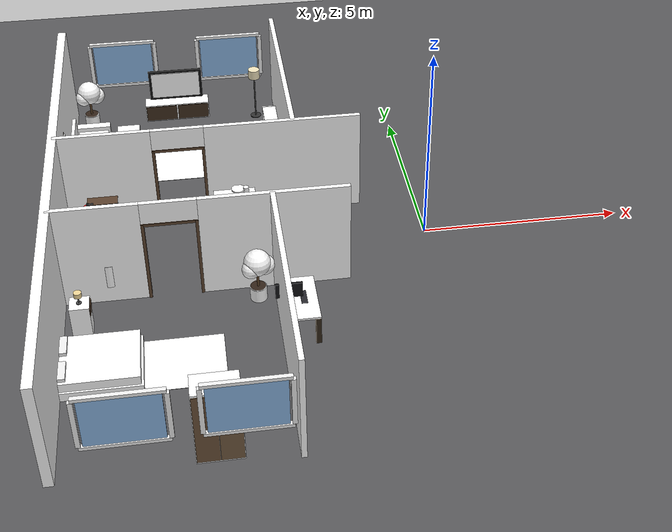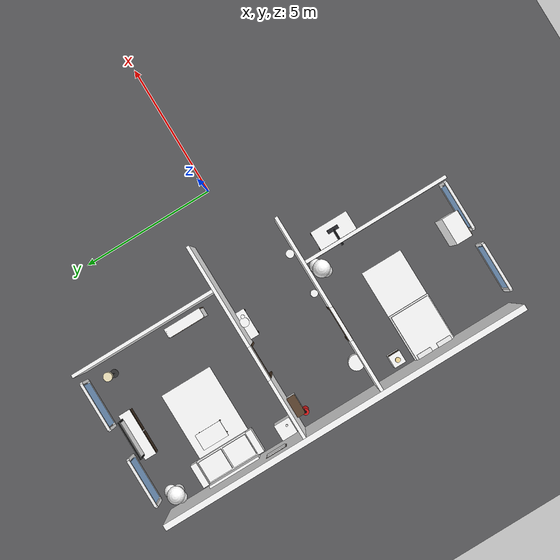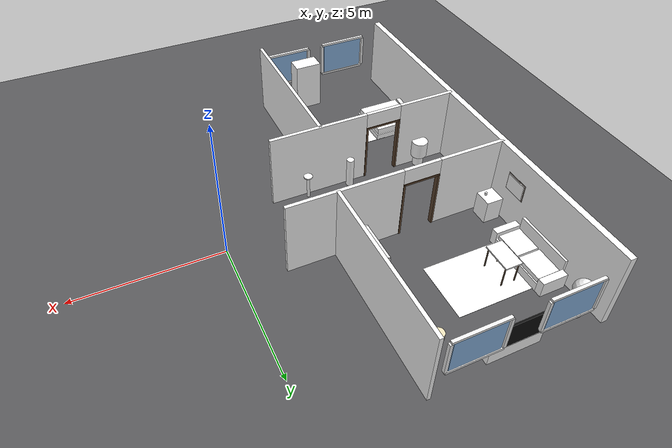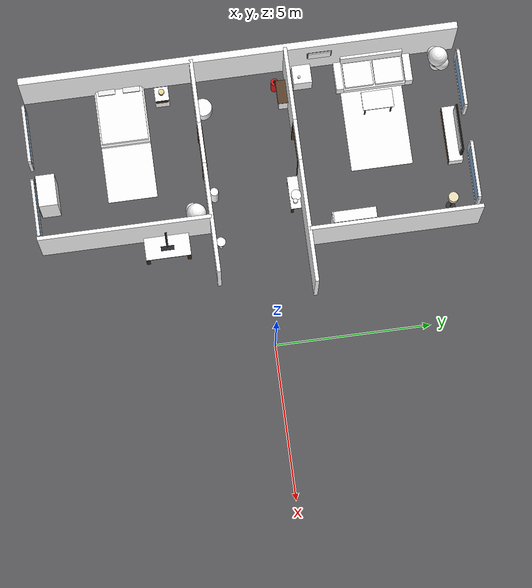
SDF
<sdf version="1.9">
 <world name="dan_house">
  <model name="ground_plane">
   <static>true</static>
   <link name="link">
    <collision name="c"><geometry><plane><normal>0 0 1</normal><size>90 90</size></plane></geometry></collision>
    <visual name="v">
     <geometry><plane><normal>0 0 1</normal><size>90 90</size></plane></geometry>
     <material><diffuse>0.35 0.35 0.36 1</diffuse></material>
    </visual>
   </link>
  </model>
  <model name="wall_west_0">
   <pose>-9.0 0.000 1.35 0 0 0</pose>
   <static>true</static>
   <link name="link">
    <collision name="c"><geometry><box><size>0.22 14.000 2.7</size></box></geometry></collision>
    <visual name="v">
     <geometry><box><size>0.22 14.000 2.7</size></box></geometry>
     <material>
      <diffuse>1 1 1 1</diffuse>
      <pbr>
       <metal>
        <albedo_map>textures/wallpaper.jpg</albedo_map>
        <metalness>0.0</metalness>
        <roughness>0.85</roughness>
       </metal>
      </pbr>
     </material>
    </visual>
   </link>
  </model>
  <model name="wall_corr_north_0">
   <pose>-7.825 1.5 1.35 0 0 0</pose>
   <static>true</static>
   <link name="link">
    <collision name="c"><geometry><box><size>2.350 0.12 2.7</size></box></geometry></collision>
    <visual name="v">
     <geometry><box><size>2.350 0.12 2.7</size></box></geometry>
     <material>
      <diffuse>1 1 1 1</diffuse>
      <pbr>
       <metal>
        <albedo_map>textures/wallpaper.jpg</albedo_map>
        <metalness>0.0</metalness>
        <roughness>0.85</roughness>
       </metal>
      </pbr>
     </material>
    </visual>
   </link>
  </model>
  <model name="wall_corr_north_1">
   <pose>-3.400 1.5 1.35 0 0 0</pose>
   <static>true</static>
   <link name="link">
    <collision name="c"><geometry><box><size>3.900 0.12 2.7</size></box></geometry></collision>
    <visual name="v">
     <geometry><box><size>3.900 0.12 2.7</size></box></geometry>
     <material>
      <diffuse>1 1 1 1</diffuse>
      <pbr>
       <metal>
        <albedo_map>textures/wallpaper.jpg</albedo_map>
        <metalness>0.0</metalness>
        <roughness>0.85</roughness>
       </metal>
      </pbr>
     </material>
    </visual>
   </link>
  </model>
  <model name="wall_corr_north_door_-6.0_p0">
   <pose>-6.615 1.5 1.075 0 0 0</pose>
   <static>true</static>
   <link name="link">
    <visual name="v">
     <geometry><box><size>0.07 0.160 2.15</size></box></geometry>
     <material><diffuse>0.36 0.26 0.18 1</diffuse></material>
    </visual>
   </link>
  </model>
  <model name="wall_corr_north_door_-6.0_p1">
   <pose>-5.385 1.5 1.075 0 0 0</pose>
   <static>true</static>
   <link name="link">
    <visual name="v">
     <geometry><box><size>0.07 0.160 2.15</size></box></geometry>
     <material><diffuse>0.36 0.26 0.18 1</diffuse></material>
    </visual>
   </link>
  </model>
  <model name="wall_corr_north_door_-6.0_top">
   <pose>-6.0 1.5 2.1149999999999998 0 0 0</pose>
   <static>true</static>
   <link name="link">
    <visual name="v">
     <geometry><box><size>1.3 0.160 0.07</size></box></geometry>
     <material><diffuse>0.36 0.26 0.18 1</diffuse></material>
    </visual>
   </link>
  </model>
  <model name="wall_corr_north_door_-6.0_lintel">
   <pose>-6.0 1.5 2.4000000000000004 0 0 0</pose>
   <static>true</static>
   <link name="link">
    <visual name="v">
     <geometry><box><size>1.3 0.12 0.600</size></box></geometry>
     <material>
      <diffuse>1 1 1 1</diffuse>
      <pbr>
       <metal>
        <albedo_map>textures/wallpaper.jpg</albedo_map>
        <metalness>0.0</metalness>
        <roughness>0.85</roughness>
       </metal>
      </pbr>
     </material>
    </visual>
   </link>
  </model>
  <model name="wall_corr_south_0">
   <pose>-7.975 -1.5 1.35 0 0 0</pose>
   <static>true</static>
   <link name="link">
    <collision name="c"><geometry><box><size>2.050 0.12 2.7</size></box></geometry></collision>
    <visual name="v">
     <geometry><box><size>2.050 0.12 2.7</size></box></geometry>
     <material>
      <diffuse>1 1 1 1</diffuse>
      <pbr>
       <metal>
        <albedo_map>textures/wallpaper.jpg</albedo_map>
        <metalness>0.0</metalness>
        <roughness>0.85</roughness>
       </metal>
      </pbr>
     </material>
    </visual>
   </link>
  </model>
  <model name="wall_corr_south_1">
   <pose>-3.900 -1.5 1.35 0 0 0</pose>
   <static>true</static>
   <link name="link">
    <collision name="c"><geometry><box><size>3.500 0.12 2.7</size></box></geometry></collision>
    <visual name="v">
     <geometry><box><size>3.500 0.12 2.7</size></box></geometry>
     <material>
      <diffuse>1 1 1 1</diffuse>
      <pbr>
       <metal>
        <albedo_map>textures/wallpaper.jpg</albedo_map>
        <metalness>0.0</metalness>
        <roughness>0.85</roughness>
       </metal>
      </pbr>
     </material>
    </visual>
   </link>
  </model>
  <model name="wall_corr_south_door_-6.3_p0">
   <pose>-6.915 -1.5 1.075 0 0 0</pose>
   <static>true</static>
   <link name="link">
    <visual name="v">
     <geometry><box><size>0.07 0.160 2.15</size></box></geometry>
     <material><diffuse>0.36 0.26 0.18 1</diffuse></material>
    </visual>
   </link>
  </model>
  <model name="wall_corr_south_door_-6.3_p1">
   <pose>-5.685 -1.5 1.075 0 0 0</pose>
   <static>true</static>
   <link name="link">
    <visual name="v">
     <geometry><box><size>0.07 0.160 2.15</size></box></geometry>
     <material><diffuse>0.36 0.26 0.18 1</diffuse></material>
    </visual>
   </link>
  </model>
  <model name="wall_corr_south_door_-6.3_top">
   <pose>-6.3 -1.5 2.1149999999999998 0 0 0</pose>
   <static>true</static>
   <link name="link">
    <visual name="v">
     <geometry><box><size>1.3 0.160 0.07</size></box></geometry>
     <material><diffuse>0.36 0.26 0.18 1</diffuse></material>
    </visual>
   </link>
  </model>
  <model name="wall_corr_south_door_-6.3_lintel">
   <pose>-6.3 -1.5 2.4000000000000004 0 0 0</pose>
   <static>true</static>
   <link name="link">
    <visual name="v">
     <geometry><box><size>1.3 0.12 0.600</size></box></geometry>
     <material>
      <diffuse>1 1 1 1</diffuse>
      <pbr>
       <metal>
        <albedo_map>textures/wallpaper.jpg</albedo_map>
        <metalness>0.0</metalness>
        <roughness>0.85</roughness>
       </metal>
      </pbr>
     </material>
    </visual>
   </link>
  </model>
  <model name="wall_living_kitchen_0">
   <pose>-3.14 4.250 1.35 0 0 0</pose>
   <static>true</static>
   <link name="link">
    <collision name="c"><geometry><box><size>0.12 5.500 2.7</size></box></geometry></collision>
    <visual name="v">
     <geometry><box><size>0.12 5.500 2.7</size></box></geometry>
     <material>
      <diffuse>1 1 1 1</diffuse>
      <pbr>
       <metal>
        <albedo_map>textures/wallpaper.jpg</albedo_map>
        <metalness>0.0</metalness>
        <roughness>0.85</roughness>
       </metal>
      </pbr>
     </material>
    </visual>
   </link>
  </model>
  <model name="wall_bed1_bed2_0">
   <pose>-3.94 -4.250 1.35 0 0 0</pose>
   <static>true</static>
   <link name="link">
    <collision name="c"><geometry><box><size>0.12 5.500 2.7</size></box></geometry></collision>
    <visual name="v">
     <geometry><box><size>0.12 5.500 2.7</size></box></geometry>
     <material>
      <diffuse>1 1 1 1</diffuse>
      <pbr>
       <metal>
        <albedo_map>textures/wallpaper.jpg</albedo_map>
        <metalness>0.0</metalness>
        <roughness>0.85</roughness>
       </metal>
      </pbr>
     </material>
    </visual>
   </link>
  </model>
  <model name="window_n1">
   <pose>-7.4 6.95 1.6 0 0 0</pose>
   <static>true</static>
   <link name="link">
    <visual name="pane">
     <geometry><box><size>1.62 0.06 1.2</size></box></geometry>
     <material><diffuse>0.55 0.72 0.9 1</diffuse><emissive>0.14 0.2 0.3</emissive></material>
    </visual>
    <visual name="ft">
     <pose>0 0 0.65 0 0 0</pose>
     <geometry><box><size>1.80 0.1 0.08</size></box></geometry>
     <material><diffuse>0.95 0.95 0.95 1</diffuse></material>
    </visual>
    <visual name="fb">
     <pose>0 0 -0.65 0 0 0</pose>
     <geometry><box><size>1.80 0.1 0.08</size></box></geometry>
     <material><diffuse>0.95 0.95 0.95 1</diffuse></material>
    </visual>
    <visual name="fl">
     <pose>-0.90 0 0 0 0 0</pose>
     <geometry><box><size>0.1 0.1 1.2</size></box></geometry>
     <material><diffuse>0.95 0.95 0.95 1</diffuse></material>
    </visual>
    <visual name="fr">
     <pose>0.90 0 0 0 0 0</pose>
     <geometry><box><size>0.1 0.1 1.2</size></box></geometry>
     <material><diffuse>0.95 0.95 0.95 1</diffuse></material>
    </visual>
   </link>
  </model>
  <model name="window_n2">
   <pose>-4.4 6.95 1.6 0 0 0</pose>
   <static>true</static>
   <link name="link">
    <visual name="pane">
     <geometry><box><size>1.62 0.06 1.2</size></box></geometry>
     <material><diffuse>0.55 0.72 0.9 1</diffuse><emissive>0.14 0.2 0.3</emissive></material>
    </visual>
    <visual name="ft">
     <pose>0 0 0.65 0 0 0</pose>
     <geometry><box><size>1.80 0.1 0.08</size></box></geometry>
     <material><diffuse>0.95 0.95 0.95 1</diffuse></material>
    </visual>
    <visual name="fb">
     <pose>0 0 -0.65 0 0 0</pose>
     <geometry><box><size>1.80 0.1 0.08</size></box></geometry>
     <material><diffuse>0.95 0.95 0.95 1</diffuse></material>
    </visual>
    <visual name="fl">
     <pose>-0.90 0 0 0 0 0</pose>
     <geometry><box><size>0.1 0.1 1.2</size></box></geometry>
     <material><diffuse>0.95 0.95 0.95 1</diffuse></material>
    </visual>
    <visual name="fr">
     <pose>0.90 0 0 0 0 0</pose>
     <geometry><box><size>0.1 0.1 1.2</size></box></geometry>
     <material><diffuse>0.95 0.95 0.95 1</diffuse></material>
    </visual>
   </link>
  </model>
  <model name="window_s1">
   <pose>-7.4 -6.95 1.6 0 0 0</pose>
   <static>true</static>
   <link name="link">
    <visual name="pane">
     <geometry><box><size>1.62 0.06 1.2</size></box></geometry>
     <material><diffuse>0.55 0.72 0.9 1</diffuse><emissive>0.14 0.2 0.3</emissive></material>
    </visual>
    <visual name="ft">
     <pose>0 0 0.65 0 0 0</pose>
     <geometry><box><size>1.80 0.1 0.08</size></box></geometry>
     <material><diffuse>0.95 0.95 0.95 1</diffuse></material>
    </visual>
    <visual name="fb">
     <pose>0 0 -0.65 0 0 0</pose>
     <geometry><box><size>1.80 0.1 0.08</size></box></geometry>
     <material><diffuse>0.95 0.95 0.95 1</diffuse></material>
    </visual>
    <visual name="fl">
     <pose>-0.90 0 0 0 0 0</pose>
     <geometry><box><size>0.1 0.1 1.2</size></box></geometry>
     <material><diffuse>0.95 0.95 0.95 1</diffuse></material>
    </visual>
    <visual name="fr">
     <pose>0.90 0 0 0 0 0</pose>
     <geometry><box><size>0.1 0.1 1.2</size></box></geometry>
     <material><diffuse>0.95 0.95 0.95 1</diffuse></material>
    </visual>
   </link>
  </model>
  <model name="window_s2">
   <pose>-5.0 -6.95 1.6 0 0 0</pose>
   <static>true</static>
   <link name="link">
    <visual name="pane">
     <geometry><box><size>1.62 0.06 1.2</size></box></geometry>
     <material><diffuse>0.55 0.72 0.9 1</diffuse><emissive>0.14 0.2 0.3</emissive></material>
    </visual>
    <visual name="ft">
     <pose>0 0 0.65 0 0 0</pose>
     <geometry><box><size>1.80 0.1 0.08</size></box></geometry>
     <material><diffuse>0.95 0.95 0.95 1</diffuse></material>
    </visual>
    <visual name="fb">
     <pose>0 0 -0.65 0 0 0</pose>
     <geometry><box><size>1.80 0.1 0.08</size></box></geometry>
     <material><diffuse>0.95 0.95 0.95 1</diffuse></material>
    </visual>
    <visual name="fl">
     <pose>-0.90 0 0 0 0 0</pose>
     <geometry><box><size>0.1 0.1 1.2</size></box></geometry>
     <material><diffuse>0.95 0.95 0.95 1</diffuse></material>
    </visual>
    <visual name="fr">
     <pose>0.90 0 0 0 0 0</pose>
     <geometry><box><size>0.1 0.1 1.2</size></box></geometry>
     <material><diffuse>0.95 0.95 0.95 1</diffuse></material>
    </visual>
   </link>
  </model>
  <model name="painting_1">
   <pose>-8.89 2.6 1.6 0 0 0</pose>
   <static>true</static>
   <link name="link">
    <visual name="frame">
     <geometry><box><size>0.02 0.8 0.65</size></box></geometry>
     <material><diffuse>0.15 0.12 0.1 1</diffuse></material>
    </visual>
    <visual name="canvas">
     <pose>0.025 0 0 0 0 0</pose>
     <geometry><box><size>0.03 0.72 0.57</size></box></geometry>
     <material>
      <diffuse>1 1 1 1</diffuse>
      <pbr>
       <metal>
        <albedo_map>textures/painting.jpg</albedo_map>
        <metalness>0.0</metalness>
        <roughness>0.85</roughness>
       </metal>
      </pbr>
     </material>
    </visual>
   </link>
  </model>
  <model name="sofa">
   <pose>-8.4 4.3 0 0 0 1.5708</pose>
   <static>true</static>
   <link name="link">
    <collision name="seat_c">
     <pose>0 0 0.21 0 0 0</pose>
     <geometry><box><size>2.0 0.85 0.42</size></box></geometry>
    </collision>
    <collision name="back_c">
     <pose>0 0.535 0.55 0 0 0</pose>
     <geometry><box><size>2.0 0.22 0.6</size></box></geometry>
    </collision>
    <visual name="base">
     <pose>0 -0.05 0.16 0 0 0</pose>
     <geometry><box><size>2.0 0.9 0.32</size></box></geometry>
     <material>
      <diffuse>1 1 1 1</diffuse>
      <pbr>
       <metal>
        <albedo_map>textures/fabric.jpg</albedo_map>
        <metalness>0.0</metalness>
        <roughness>0.85</roughness>
       </metal>
      </pbr>
     </material>
    </visual>
    <visual name="cl">
     <pose>-0.49 -0.05 0.40 0 0 0</pose>
     <geometry><box><size>0.92 0.8 0.16</size></box></geometry>
     <material>
      <diffuse>1 1 1 1</diffuse>
      <pbr>
       <metal>
        <albedo_map>textures/fabric.jpg</albedo_map>
        <metalness>0.0</metalness>
        <roughness>0.85</roughness>
       </metal>
      </pbr>
     </material>
    </visual>
    <visual name="cr">
     <pose>0.49 -0.05 0.40 0 0 0</pose>
     <geometry><box><size>0.92 0.8 0.16</size></box></geometry>
     <material>
      <diffuse>1 1 1 1</diffuse>
      <pbr>
       <metal>
        <albedo_map>textures/fabric.jpg</albedo_map>
        <metalness>0.0</metalness>
        <roughness>0.85</roughness>
       </metal>
      </pbr>
     </material>
    </visual>
    <visual name="back">
     <pose>0 0.52 0.55 0 0 0</pose>
     <geometry><box><size>2.0 0.24 0.7</size></box></geometry>
     <material>
      <diffuse>1 1 1 1</diffuse>
      <pbr>
       <metal>
        <albedo_map>textures/fabric.jpg</albedo_map>
        <metalness>0.0</metalness>
        <roughness>0.85</roughness>
       </metal>
      </pbr>
     </material>
    </visual>
    <visual name="al">
     <pose>-1.12 -0.05 0.28 0 0 0</pose>
     <geometry><box><size>0.24 0.9 0.56</size></box></geometry>
     <material>
      <diffuse>1 1 1 1</diffuse>
      <pbr>
       <metal>
        <albedo_map>textures/fabric.jpg</albedo_map>
        <metalness>0.0</metalness>
        <roughness>0.85</roughness>
       </metal>
      </pbr>
     </material>
    </visual>
    <visual name="ar">
     <pose>1.12 -0.05 0.28 0 0 0</pose>
     <geometry><box><size>0.24 0.9 0.56</size></box></geometry>
     <material>
      <diffuse>1 1 1 1</diffuse>
      <pbr>
       <metal>
        <albedo_map>textures/fabric.jpg</albedo_map>
        <metalness>0.0</metalness>
        <roughness>0.85</roughness>
       </metal>
      </pbr>
     </material>
    </visual>
    <visual name="l1">
     <pose>-1.05 -0.45 0.035 0 0 0</pose>
     <geometry><cylinder><radius>0.03</radius><length>0.07</length></cylinder></geometry>
     <material><diffuse>0.2 0.15 0.1 1</diffuse></material>
    </visual>
    <visual name="l2">
     <pose>1.05 -0.45 0.035 0 0 0</pose>
     <geometry><cylinder><radius>0.03</radius><length>0.07</length></cylinder></geometry>
     <material><diffuse>0.2 0.15 0.1 1</diffuse></material>
    </visual>
    <visual name="l3">
     <pose>-1.05 0.3 0.035 0 0 0</pose>
     <geometry><cylinder><radius>0.03</radius><length>0.07</length></cylinder></geometry>
     <material><diffuse>0.2 0.15 0.1 1</diffuse></material>
    </visual>
    <visual name="l4">
     <pose>1.05 0.3 0.035 0 0 0</pose>
     <geometry><cylinder><radius>0.03</radius><length>0.07</length></cylinder></geometry>
     <material><diffuse>0.2 0.15 0.1 1</diffuse></material>
    </visual>
   </link>
  </model>
  <model name="coffee_table">
   <pose>-7.35 4.3 0 0 0 1.5708</pose>
   <static>true</static>
   <link name="link">
    <collision name="c">
     <pose>0 0 0.430 0 0 0</pose>
     <geometry><box><size>1.0 0.6 0.860</size></box></geometry>
    </collision>
    <visual name="top">
     <pose>0 0 0.835 0 0 0</pose>
     <geometry><box><size>1.0 0.6 0.05</size></box></geometry>
     <material>
      <diffuse>1 1 1 1</diffuse>
      <pbr>
       <metal>
        <albedo_map>textures/wood_dark.jpg</albedo_map>
        <metalness>0.0</metalness>
        <roughness>0.85</roughness>
       </metal>
      </pbr>
     </material>
    </visual>
    <visual name="l1">
     <pose>-0.42 -0.24 0.405 0 0 0</pose>
     <geometry><cylinder><radius>0.025</radius><length>0.8099999999999999</length></cylinder></geometry>
     <material><diffuse>0.2 0.15 0.1 1</diffuse></material>
    </visual>
    <visual name="l2">
     <pose>0.42 -0.24 0.405 0 0 0</pose>
     <geometry><cylinder><radius>0.025</radius><length>0.8099999999999999</length></cylinder></geometry>
     <material><diffuse>0.2 0.15 0.1 1</diffuse></material>
    </visual>
    <visual name="l3">
     <pose>-0.42 0.24 0.405 0 0 0</pose>
     <geometry><cylinder><radius>0.025</radius><length>0.8099999999999999</length></cylinder></geometry>
     <material><diffuse>0.2 0.15 0.1 1</diffuse></material>
    </visual>
    <visual name="l4">
     <pose>0.42 0.24 0.405 0 0 0</pose>
     <geometry><cylinder><radius>0.025</radius><length>0.8099999999999999</length></cylinder></geometry>
     <material><diffuse>0.2 0.15 0.1 1</diffuse></material>
    </visual>
   </link>
  </model>
  <model name="rug">
   <pose>-6.6 4.2 0.0125 0 0 0.0</pose>
   <static>true</static>
   <link name="link">
    <visual name="v">
     <geometry><box><size>2.6 2.0 0.008</size></box></geometry>
     <material>
      <diffuse>1 1 1 1</diffuse>
      <pbr>
       <metal><albedo_map>textures/rug.jpg</albedo_map><metalness>0.0</metalness><roughness>0.85</roughness></metal>
      </pbr>
     </material>
    </visual>
   </link>
  </model>
  <model name="tv_set">
   <pose>-6.0 6.55 0 0 0 -1.5708</pose>
   <static>true</static>
   <link name="link">
    <collision name="c">
     <pose>0 0 0.25 0 0 0</pose>
     <geometry><box><size>0.45 1.8 0.5</size></box></geometry>
    </collision>
    <visual name="body">
     <pose>0 0 0.25 0 0 0</pose>
     <geometry><box><size>0.45 1.8 0.5</size></box></geometry>
     <material>
      <diffuse>1 1 1 1</diffuse>
      <pbr>
       <metal>
        <albedo_map>textures/wood_dark.jpg</albedo_map>
        <metalness>0.0</metalness>
        <roughness>0.85</roughness>
       </metal>
      </pbr>
     </material>
    </visual>
    <visual name="d1">
     <pose>0.235 -0.45 0.25 0 0 0</pose>
     <geometry><box><size>0.02 0.86 0.44</size></box></geometry>
     <material><diffuse>0.25 0.18 0.12 1</diffuse></material>
    </visual>
    <visual name="d2">
     <pose>0.235 0.45 0.25 0 0 0</pose>
     <geometry><box><size>0.02 0.86 0.44</size></box></geometry>
     <material><diffuse>0.25 0.18 0.12 1</diffuse></material>
    </visual>
    <collision name="tv_c">
     <pose>-0.18 0 0.95 0 0 0</pose>
     <geometry><box><size>0.07 1.5 0.9</size></box></geometry>
    </collision>
    <visual name="tvframe">
     <pose>-0.18 0 0.95 0 0 0</pose>
     <geometry><box><size>0.07 1.5 0.9</size></box></geometry>
     <material><diffuse>0.05 0.05 0.05 1</diffuse></material>
    </visual>
    <visual name="screen">
     <pose>-0.135 0 0.95 0 0 0</pose>
     <geometry><box><size>0.02 1.36 0.76</size></box></geometry>
     <material>
      <diffuse>1 1 1 1</diffuse>
      <emissive>0.15 0.17 0.22 1</emissive>
      <pbr>
       <metal>
        <albedo_map>textures/screen.jpg</albedo_map>
        <metalness>0.0</metalness>
        <roughness>0.3</roughness>
       </metal>
      </pbr>
     </material>
    </visual>
    <visual name="neck">
     <pose>-0.18 0 0.44 0 0 0</pose>
     <geometry><box><size>0.06 0.25 0.12</size></box></geometry>
     <material><diffuse>0.05 0.05 0.05 1</diffuse></material>
    </visual>
   </link>
  </model>
  <model name="bookshelf">
   <pose>-3.55 3.0 0 0 0 1.5708</pose>
   <static>true</static>
   <link name="link">
    <collision name="c">
     <pose>0 0 0.9 0 0 0</pose>
     <geometry><box><size>1.4 0.35 1.8</size></box></geometry>
    </collision>
    <visual name="sl">
     <pose>-0.68 0 0.9 0 0 0</pose>
     <geometry><box><size>0.04 0.35 1.8</size></box></geometry>
     <material>
      <diffuse>1 1 1 1</diffuse>
      <pbr>
       <metal>
        <albedo_map>textures/wood_dark.jpg</albedo_map>
        <metalness>0.0</metalness>
        <roughness>0.85</roughness>
       </metal>
      </pbr>
     </material>
    </visual>
    <visual name="sr">
     <pose>0.68 0 0.9 0 0 0</pose>
     <geometry><box><size>0.04 0.35 1.8</size></box></geometry>
     <material>
      <diffuse>1 1 1 1</diffuse>
      <pbr>
       <metal>
        <albedo_map>textures/wood_dark.jpg</albedo_map>
        <metalness>0.0</metalness>
        <roughness>0.85</roughness>
       </metal>
      </pbr>
     </material>
    </visual>
    <visual name="top">
     <pose>0 0 1.78 0 0 0</pose>
     <geometry><box><size>1.4 0.35 0.04</size></box></geometry>
     <material>
      <diffuse>1 1 1 1</diffuse>
      <pbr>
       <metal>
        <albedo_map>textures/wood_dark.jpg</albedo_map>
        <metalness>0.0</metalness>
        <roughness>0.85</roughness>
       </metal>
      </pbr>
     </material>
    </visual>
    <visual name="bot">
     <pose>0 0 0.02 0 0 0</pose>
     <geometry><box><size>1.4 0.35 0.04</size></box></geometry>
     <material>
      <diffuse>1 1 1 1</diffuse>
      <pbr>
       <metal>
        <albedo_map>textures/wood_dark.jpg</albedo_map>
        <metalness>0.0</metalness>
        <roughness>0.85</roughness>
       </metal>
      </pbr>
     </material>
    </visual>
    <visual name="back">
     <pose>0 -0.155 0.9 0 0 0</pose>
     <geometry><box><size>1.4 0.04 1.72</size></box></geometry>
     <material><diffuse>0.3 0.22 0.15 1</diffuse></material>
    </visual>
    <visual name="s1">
     <pose>0 0.02 0.45 0 0 0</pose>
     <geometry><box><size>1.32 0.3 0.03</size></box></geometry>
     <material><diffuse>0.4 0.28 0.18 1</diffuse></material>
    </visual>
    <visual name="s2">
     <pose>0 0.02 0.9 0 0 0</pose>
     <geometry><box><size>1.32 0.3 0.03</size></box></geometry>
     <material><diffuse>0.4 0.28 0.18 1</diffuse></material>
    </visual>
    <visual name="s3">
     <pose>0 0.02 1.35 0 0 0</pose>
     <geometry><box><size>1.32 0.3 0.03</size></box></geometry>
     <material><diffuse>0.4 0.28 0.18 1</diffuse></material>
    </visual>
    <visual name="b1">
     <pose>-0.5 0 0.585 0 0 0</pose>
     <geometry><box><size>0.07 0.24 0.24</size></box></geometry>
     <material><diffuse>0.65 0.25 0.2 1</diffuse></material>
    </visual>
    <visual name="b2">
     <pose>-0.38 0 0.585 0 0 0</pose>
     <geometry><box><size>0.07 0.24 0.24</size></box></geometry>
     <material><diffuse>0.2 0.35 0.6 1</diffuse></material>
    </visual>
    <visual name="b3">
     <pose>-0.26 0 0.585 0 0 0</pose>
     <geometry><box><size>0.07 0.24 0.24</size></box></geometry>
     <material><diffuse>0.25 0.5 0.3 1</diffuse></material>
    </visual>
    <visual name="b4">
     <pose>-0.14 0 0.585 0 0 0</pose>
     <geometry><box><size>0.07 0.24 0.24</size></box></geometry>
     <material><diffuse>0.8 0.7 0.2 1</diffuse></material>
    </visual>
    <visual name="b5">
     <pose>-0.020000000000000018 0 0.585 0 0 0</pose>
     <geometry><box><size>0.07 0.24 0.24</size></box></geometry>
     <material><diffuse>0.5 0.3 0.55 1</diffuse></material>
    </visual>
   </link>
  </model>
  <model name="plant">
   <pose>-8.45 6.4 0 0 0 0</pose>
   <static>true</static>
   <link name="link">
    <collision name="pot_c">
     <pose>0 0 0.175 0 0 0</pose>
     <geometry><cylinder><radius>0.2</radius><length>0.35</length></cylinder></geometry>
    </collision>
    <collision name="leaf_c">
     <pose>0 0 0.8 0 0 0</pose>
     <geometry><cylinder><radius>0.38</radius><length>0.9</length></cylinder></geometry>
    </collision>
    <visual name="pot">
     <pose>0 0 0.175 0 0 0</pose>
     <geometry><cylinder><radius>0.2</radius><length>0.35</length></cylinder></geometry>
     <material>
      <diffuse>1 1 1 1</diffuse>
      <pbr>
       <metal>
        <albedo_map>textures/terracotta.jpg</albedo_map>
        <metalness>0.0</metalness>
        <roughness>0.85</roughness>
       </metal>
      </pbr>
     </material>
    </visual>
    <visual name="soil">
     <pose>0 0 0.36 0 0 0</pose>
     <geometry><cylinder><radius>0.18</radius><length>0.02</length></cylinder></geometry>
     <material><diffuse>0.2 0.14 0.1 1</diffuse></material>
    </visual>
    <visual name="trunk">
     <pose>0 0 0.63 0 0 0</pose>
     <geometry><cylinder><radius>0.03</radius><length>0.55</length></cylinder></geometry>
     <material><diffuse>0.35 0.25 0.15 1</diffuse></material>
    </visual>
    <visual name="lf1">
     <pose>0 0 1.05 0 0 0</pose>
     <geometry><sphere><radius>0.32</radius></sphere></geometry>
     <material>
      <diffuse>1 1 1 1</diffuse>
      <pbr>
       <metal><albedo_map>textures/leaf.jpg</albedo_map><metalness>0.0</metalness><roughness>0.85</roughness></metal>
      </pbr>
     </material>
    </visual>
    <visual name="lf2">
     <pose>0.18 0.1 0.9 0 0 0</pose>
     <geometry><sphere><radius>0.24</radius></sphere></geometry>
     <material>
      <diffuse>1 1 1 1</diffuse>
      <pbr>
       <metal><albedo_map>textures/leaf.jpg</albedo_map><metalness>0.0</metalness><roughness>0.85</roughness></metal>
      </pbr>
     </material>
    </visual>
    <visual name="lf3">
     <pose>-0.15 -0.1 0.95 0 0 0</pose>
     <geometry><sphere><radius>0.22</radius></sphere></geometry>
     <material>
      <diffuse>1 1 1 1</diffuse>
      <pbr>
       <metal><albedo_map>textures/leaf.jpg</albedo_map><metalness>0.0</metalness><roughness>0.85</roughness></metal>
      </pbr>
     </material>
    </visual>
   </link>
  </model>
  <model name="side_table">
   <pose>-8.5 2.0 0 0 0 0.0</pose>
   <static>true</static>
   <link name="link">
    <collision name="c">
     <pose>0 0 0.430 0 0 0</pose>
     <geometry><box><size>0.6 0.6 0.860</size></box></geometry>
    </collision>
    <visual name="body">
     <pose>0 0 0.430 0 0 0</pose>
     <geometry><box><size>0.6 0.6 0.860</size></box></geometry>
     <material>
      <diffuse>1 1 1 1</diffuse>
      <pbr>
       <metal>
        <albedo_map>textures/wood_dark.jpg</albedo_map>
        <metalness>0.0</metalness>
        <roughness>0.85</roughness>
       </metal>
      </pbr>
     </material>
    </visual>
    <visual name="mug">
     <pose>0.1 -0.1 0.905 0 0 0</pose>
     <geometry><cylinder><radius>0.04</radius><length>0.09</length></cylinder></geometry>
     <material><diffuse>0.95 0.95 0.95 1</diffuse></material>
    </visual>
   </link>
  </model>
  <model name="floor_lamp">
   <pose>-3.75 6.2 0 0 0 0</pose>
   <static>true</static>
   <link name="link">
    <collision name="c">
     <pose>0 0 0.7 0 0 0</pose>
     <geometry><cylinder><radius>0.16</radius><length>1.4</length></cylinder></geometry>
    </collision>
    <visual name="base">
     <pose>0 0 0.01 0 0 0</pose>
     <geometry><cylinder><radius>0.15</radius><length>0.02</length></cylinder></geometry>
     <material><diffuse>0.2 0.2 0.2 1</diffuse></material>
    </visual>
    <visual name="pole">
     <pose>0 0 0.66 0 0 0</pose>
     <geometry><cylinder><radius>0.02</radius><length>1.28</length></cylinder></geometry>
     <material><diffuse>0.25 0.25 0.25 1</diffuse></material>
    </visual>
    <visual name="shade">
     <pose>0 0 1.4 0 0 0</pose>
     <geometry><cylinder><radius>0.16</radius><length>0.26</length></cylinder></geometry>
     <material><diffuse>0.95 0.9 0.75 1</diffuse><emissive>0.6 0.5 0.32</emissive></material>
    </visual>
   </link>
  </model>
  <model name="bed">
   <pose>-8.15 -3.9 0 0 0 -1.5708</pose>
   <static>true</static>
   <link name="link">
    <collision name="c">
     <pose>0 0 0.225 0 0 0</pose>
     <geometry><box><size>1.5 2.0 0.45</size></box></geometry>
    </collision>
    <visual name="frame">
     <pose>0 0 0.11 0 0 0</pose>
     <geometry><box><size>1.6 2.1 0.22</size></box></geometry>
     <material>
      <diffuse>1 1 1 1</diffuse>
      <pbr>
       <metal>
        <albedo_map>textures/wood_dark.jpg</albedo_map>
        <metalness>0.0</metalness>
        <roughness>0.85</roughness>
       </metal>
      </pbr>
     </material>
    </visual>
    <visual name="mattress">
     <pose>0 0 0.33 0 0 0</pose>
     <geometry><box><size>1.5 2.0 0.22</size></box></geometry>
     <material>
      <diffuse>1 1 1 1</diffuse>
      <pbr>
       <metal>
        <albedo_map>textures/bedding.jpg</albedo_map>
        <metalness>0.0</metalness>
        <roughness>0.85</roughness>
       </metal>
      </pbr>
     </material>
    </visual>
    <visual name="head">
     <pose>0 -1.0 0.6 0 0 0</pose>
     <geometry><box><size>1.6 0.1 0.9</size></box></geometry>
     <material>
      <diffuse>1 1 1 1</diffuse>
      <pbr>
       <metal>
        <albedo_map>textures/wood_dark.jpg</albedo_map>
        <metalness>0.0</metalness>
        <roughness>0.85</roughness>
       </metal>
      </pbr>
     </material>
    </visual>
    <visual name="p1">
     <pose>-0.4 -0.75 0.48 0 0 0</pose>
     <geometry><box><size>0.55 0.35 0.09</size></box></geometry>
     <material><diffuse>0.95 0.95 0.95 1</diffuse></material>
    </visual>
    <visual name="p2">
     <pose>0.4 -0.75 0.48 0 0 0</pose>
     <geometry><box><size>0.55 0.35 0.09</size></box></geometry>
     <material><diffuse>0.95 0.95 0.95 1</diffuse></material>
    </visual>
   </link>
  </model>
  <model name="nightstand">
   <pose>-8.45 -2.55 0 0 0 0.0</pose>
   <static>true</static>
   <link name="link">
    <collision name="c">
     <pose>0 0 0.430 0 0 0</pose>
     <geometry><box><size>0.45 0.45 0.860</size></box></geometry>
    </collision>
    <visual name="body">
     <pose>0 0 0.430 0 0 0</pose>
     <geometry><box><size>0.45 0.45 0.860</size></box></geometry>
     <material>
      <diffuse>1 1 1 1</diffuse>
      <pbr>
       <metal>
        <albedo_map>textures/wood_dark.jpg</albedo_map>
        <metalness>0.0</metalness>
        <roughness>0.85</roughness>
       </metal>
      </pbr>
     </material>
    </visual>
    <visual name="drawer">
     <pose>0.235 0 0.710 0 0 0</pose>
     <geometry><box><size>0.02 0.4 0.18</size></box></geometry>
     <material><diffuse>0.3 0.22 0.15 1</diffuse></material>
    </visual>
    <visual name="lb">
     <pose>0 0 0.870 0 0 0</pose>
     <geometry><cylinder><radius>0.06</radius><length>0.02</length></cylinder></geometry>
     <material><diffuse>0.3 0.3 0.3 1</diffuse></material>
    </visual>
    <visual name="lp">
     <pose>0 0 0.970 0 0 0</pose>
     <geometry><cylinder><radius>0.015</radius><length>0.18</length></cylinder></geometry>
     <material><diffuse>0.3 0.3 0.3 1</diffuse></material>
    </visual>
    <visual name="ls">
     <pose>0 0 1.110 0 0 0</pose>
     <geometry><cylinder><radius>0.09</radius><length>0.12</length></cylinder></geometry>
     <material><diffuse>0.95 0.85 0.6 1</diffuse><emissive>0.55 0.45 0.28</emissive></material>
    </visual>
   </link>
  </model>
  <model name="wardrobe">
   <pose>-5.6 -6.55 0 0 0 0.0</pose>
   <static>true</static>
   <link name="link">
    <collision name="c">
     <pose>0 0 0.95 0 0 0</pose>
     <geometry><box><size>1.0 0.6 1.9</size></box></geometry>
    </collision>
    <visual name="body">
     <pose>0 0 0.95 0 0 0</pose>
     <geometry><box><size>1.0 0.6 1.9</size></box></geometry>
     <material>
      <diffuse>1 1 1 1</diffuse>
      <pbr>
       <metal>
        <albedo_map>textures/wood_dark.jpg</albedo_map>
        <metalness>0.0</metalness>
        <roughness>0.85</roughness>
       </metal>
      </pbr>
     </material>
    </visual>
    <visual name="d1">
     <pose>-0.245 -0.31 0.95 0 0 0</pose>
     <geometry><box><size>0.48 0.02 1.8</size></box></geometry>
     <material><diffuse>0.42 0.32 0.22 1</diffuse></material>
    </visual>
    <visual name="d2">
     <pose>0.245 -0.31 0.95 0 0 0</pose>
     <geometry><box><size>0.48 0.02 1.8</size></box></geometry>
     <material><diffuse>0.45 0.35 0.25 1</diffuse></material>
    </visual>
    <visual name="h1">
     <pose>-0.05 -0.33 1.0 0 0 0</pose>
     <geometry><box><size>0.03 0.03 0.12</size></box></geometry>
     <material><diffuse>0.7 0.7 0.72 1</diffuse></material>
    </visual>
    <visual name="h2">
     <pose>0.05 -0.33 1.0 0 0 0</pose>
     <geometry><box><size>0.03 0.03 0.12</size></box></geometry>
     <material><diffuse>0.7 0.7 0.72 1</diffuse></material>
    </visual>
   </link>
  </model>
  <model name="rug_2">
   <pose>-6.4 -3.9 0.0125 0 0 0.0</pose>
   <static>true</static>
   <link name="link">
    <visual name="v">
     <geometry><box><size>2.2 1.6 0.008</size></box></geometry>
     <material>
      <diffuse>1 1 1 1</diffuse>
      <pbr>
       <metal><albedo_map>textures/rug.jpg</albedo_map><metalness>0.0</metalness><roughness>0.85</roughness></metal>
      </pbr>
     </material>
    </visual>
   </link>
  </model>
  <model name="plant_3">
   <pose>-4.4 -1.95 0 0 0 0</pose>
   <static>true</static>
   <link name="link">
    <collision name="pot_c">
     <pose>0 0 0.175 0 0 0</pose>
     <geometry><cylinder><radius>0.2</radius><length>0.35</length></cylinder></geometry>
    </collision>
    <collision name="leaf_c">
     <pose>0 0 0.8 0 0 0</pose>
     <geometry><cylinder><radius>0.38</radius><length>0.9</length></cylinder></geometry>
    </collision>
    <visual name="pot">
     <pose>0 0 0.175 0 0 0</pose>
     <geometry><cylinder><radius>0.2</radius><length>0.35</length></cylinder></geometry>
     <material>
      <diffuse>1 1 1 1</diffuse>
      <pbr>
       <metal>
        <albedo_map>textures/terracotta.jpg</albedo_map>
        <metalness>0.0</metalness>
        <roughness>0.85</roughness>
       </metal>
      </pbr>
     </material>
    </visual>
    <visual name="soil">
     <pose>0 0 0.36 0 0 0</pose>
     <geometry><cylinder><radius>0.18</radius><length>0.02</length></cylinder></geometry>
     <material><diffuse>0.2 0.14 0.1 1</diffuse></material>
    </visual>
    <visual name="trunk">
     <pose>0 0 0.63 0 0 0</pose>
     <geometry><cylinder><radius>0.03</radius><length>0.55</length></cylinder></geometry>
     <material><diffuse>0.35 0.25 0.15 1</diffuse></material>
    </visual>
    <visual name="lf1">
     <pose>0 0 1.05 0 0 0</pose>
     <geometry><sphere><radius>0.32</radius></sphere></geometry>
     <material>
      <diffuse>1 1 1 1</diffuse>
      <pbr>
       <metal><albedo_map>textures/leaf.jpg</albedo_map><metalness>0.0</metalness><roughness>0.85</roughness></metal>
      </pbr>
     </material>
    </visual>
    <visual name="lf2">
     <pose>0.18 0.1 0.9 0 0 0</pose>
     <geometry><sphere><radius>0.24</radius></sphere></geometry>
     <material>
      <diffuse>1 1 1 1</diffuse>
      <pbr>
       <metal><albedo_map>textures/leaf.jpg</albedo_map><metalness>0.0</metalness><roughness>0.85</roughness></metal>
      </pbr>
     </material>
    </visual>
    <visual name="lf3">
     <pose>-0.15 -0.1 0.95 0 0 0</pose>
     <geometry><sphere><radius>0.22</radius></sphere></geometry>
     <material>
      <diffuse>1 1 1 1</diffuse>
      <pbr>
       <metal><albedo_map>textures/leaf.jpg</albedo_map><metalness>0.0</metalness><roughness>0.85</roughness></metal>
      </pbr>
     </material>
    </visual>
   </link>
  </model>
  <model name="desk_3">
   <pose>-3.5 -3.0 0 0 0 1.5708</pose>
   <static>true</static>
   <link name="link">
    <collision name="c">
     <pose>0 0 0.38 0 0 0</pose>
     <geometry><box><size>1.4 0.7 0.76</size></box></geometry>
    </collision>
    <visual name="top">
     <pose>0 0 0.75 0 0 0</pose>
     <geometry><box><size>1.45 0.72 0.05</size></box></geometry>
     <material>
      <diffuse>1 1 1 1</diffuse>
      <pbr>
       <metal>
        <albedo_map>textures/wood_dark.jpg</albedo_map>
        <metalness>0.0</metalness>
        <roughness>0.85</roughness>
       </metal>
      </pbr>
     </material>
    </visual>
    <visual name="leg1">
     <pose>-0.66 -0.3 0.36 0 0 0</pose>
     <geometry><box><size>0.12 0.12 0.72</size></box></geometry>
     <material><diffuse>0.2 0.15 0.1 1</diffuse></material>
    </visual>
    <visual name="leg2">
     <pose>0.66 -0.3 0.36 0 0 0</pose>
     <geometry><box><size>0.12 0.12 0.72</size></box></geometry>
     <material><diffuse>0.2 0.15 0.1 1</diffuse></material>
    </visual>
    <visual name="leg3">
     <pose>-0.66 0.3 0.36 0 0 0</pose>
     <geometry><box><size>0.12 0.12 0.72</size></box></geometry>
     <material><diffuse>0.2 0.15 0.1 1</diffuse></material>
    </visual>
    <visual name="leg4">
     <pose>0.66 0.3 0.36 0 0 0</pose>
     <geometry><box><size>0.12 0.12 0.72</size></box></geometry>
     <material><diffuse>0.2 0.15 0.1 1</diffuse></material>
    </visual>
    <visual name="monitor">
     <pose>0 0.28 1.03 0 0 0</pose>
     <geometry><box><size>0.06 0.62 0.38</size></box></geometry>
     <material><diffuse>0.08 0.08 0.09 1</diffuse></material>
    </visual>
    <visual name="mstand">
     <pose>0 0.28 0.83 0 0 0</pose>
     <geometry><box><size>0.06 0.06 0.12</size></box></geometry>
     <material><diffuse>0.3 0.3 0.32 1</diffuse></material>
    </visual>
    <visual name="keyb">
     <pose>0 -0.05 0.785 0 0 0</pose>
     <geometry><box><size>0.42 0.14 0.02</size></box></geometry>
     <material><diffuse>0.15 0.15 0.17 1</diffuse></material>
    </visual>
   </link>
  </model>
  <model name="console_table">
   <pose>-4.7 1.24 0 0 0 0.0</pose>
   <static>true</static>
   <link name="link">
    <collision name="c">
     <pose>0 0 0.4 0 0 0</pose>
     <geometry><box><size>1.0 0.32 0.8</size></box></geometry>
    </collision>
    <visual name="top">
     <pose>0 0 0.78 0 0 0</pose>
     <geometry><box><size>1.05 0.34 0.05</size></box></geometry>
     <material>
      <diffuse>1 1 1 1</diffuse>
      <pbr>
       <metal>
        <albedo_map>textures/wood_dark.jpg</albedo_map>
        <metalness>0.0</metalness>
        <roughness>0.85</roughness>
       </metal>
      </pbr>
     </material>
    </visual>
    <visual name="leg1">
     <pose>-0.45 -0.12 0.38 0 0 0</pose>
     <geometry><box><size>0.08 0.08 0.76</size></box></geometry>
     <material><diffuse>0.2 0.15 0.1 1</diffuse></material>
    </visual>
    <visual name="leg2">
     <pose>0.45 -0.12 0.38 0 0 0</pose>
     <geometry><box><size>0.08 0.08 0.76</size></box></geometry>
     <material><diffuse>0.2 0.15 0.1 1</diffuse></material>
    </visual>
    <visual name="vase">
     <pose>0.3 0 0.88 0 0 0</pose>
     <geometry><cylinder><radius>0.07</radius><length>0.16</length></cylinder></geometry>
     <material>
      <diffuse>1 1 1 1</diffuse>
      <pbr>
       <metal>
        <albedo_map>textures/terracotta.jpg</albedo_map>
        <metalness>0.0</metalness>
        <roughness>0.85</roughness>
       </metal>
      </pbr>
     </material>
    </visual>
   </link>
  </model>
  <model name="fire_extinguisher">
   <pose>-8.35 1.1 0 0 0 0</pose>
   <static>true</static>
   <link name="link">
    <collision name="c">
     <pose>0 0 0.430 0 0 0</pose>
     <geometry><cylinder><radius>0.12</radius><length>0.86</length></cylinder></geometry>
    </collision>
    <visual name="body">
     <pose>0 0 0.430 0 0 0</pose>
     <geometry><cylinder><radius>0.12</radius><length>0.86</length></cylinder></geometry>
     <material><diffuse>0.85 0.1 0.1 1</diffuse></material>
    </visual>
    <visual name="neck">
     <pose>0 0 0.900 0 0 0</pose>
     <geometry><cylinder><radius>0.04</radius><length>0.1</length></cylinder></geometry>
     <material><diffuse>0.2 0.2 0.2 1</diffuse></material>
    </visual>
    <visual name="handle">
     <pose>0.06 0 0.940 0 0 0</pose>
     <geometry><box><size>0.14 0.03 0.03</size></box></geometry>
     <material><diffuse>0.15 0.15 0.15 1</diffuse></material>
    </visual>
   </link>
  </model>
  <model name="shoe_cabinet">
   <pose>-8.0 1.29 0 0 0 0</pose>
   <static>true</static>
   <link name="link">
    <collision name="c">
     <pose>0 0 0.43 0 0 0</pose>
     <geometry><box><size>0.72 0.3 0.86</size></box></geometry>
    </collision>
    <visual name="body">
     <pose>0 0 0.43 0 0 0</pose>
     <geometry><box><size>0.72 0.3 0.86</size></box></geometry>
     <material>
      <diffuse>1 1 1 1</diffuse>
      <pbr>
       <metal>
        <albedo_map>textures/wood_dark.jpg</albedo_map>
        <metalness>0.0</metalness>
        <roughness>0.85</roughness>
       </metal>
      </pbr>
     </material>
    </visual>
    <visual name="top">
     <pose>0 0 0.875 0 0 0</pose>
     <geometry><box><size>0.76 0.33999999999999997 0.03</size></box></geometry>
     <material><diffuse>0.36 0.26 0.18 1</diffuse></material>
    </visual>
   </link>
  </model>
  <model name="potted_plant">
   <pose>-7.8 -1.29 0 0 0 0</pose>
   <static>true</static>
   <link name="link">
    <collision name="c_base">
     <pose>0 0 0.21 0 0 0</pose>
     <geometry><cylinder><radius>0.19</radius><length>0.42</length></cylinder></geometry>
    </collision>
    <visual name="v_base">
     <pose>0 0 0.21 0 0 0</pose>
     <geometry><cylinder><radius>0.19</radius><length>0.42</length></cylinder></geometry>
     <material>
      <diffuse>1 1 1 1</diffuse>
      <pbr>
       <metal>
        <albedo_map>textures/terracotta.jpg</albedo_map>
        <metalness>0.0</metalness>
        <roughness>0.85</roughness>
       </metal>
      </pbr>
     </material>
    </visual>
    <visual name="v_leaf">
     <pose>0 0 0.72 0 0 0</pose>
     <geometry><cylinder><radius>0.28500000000000003</radius><length>0.6</length></cylinder></geometry>
     <material>
      <diffuse>1 1 1 1</diffuse>
      <pbr>
       <metal><albedo_map>textures/leaf.jpg</albedo_map><metalness>0.0</metalness><roughness>0.85</roughness></metal>
      </pbr>
     </material>
    </visual>
   </link>
  </model>
  <model name="stool">
   <pose>-4.6 1.29 0 0 0 0</pose>
   <static>true</static>
   <link name="link">
    <collision name="c">
     <pose>0 0 0.45 0 0 0</pose>
     <geometry><cylinder><radius>0.17</radius><length>0.9</length></cylinder></geometry>
    </collision>
    <visual name="seat">
     <pose>0 0 0.88 0 0 0</pose>
     <geometry><cylinder><radius>0.17</radius><length>0.04</length></cylinder></geometry>
     <material>
      <diffuse>1 1 1 1</diffuse>
      <pbr>
       <metal>
        <albedo_map>textures/fabric.jpg</albedo_map>
        <metalness>0.0</metalness>
        <roughness>0.85</roughness>
       </metal>
      </pbr>
     </material>
    </visual>
    <visual name="leg">
     <pose>0 0 0.43 0 0 0</pose>
     <geometry><cylinder><radius>0.0595</radius><length>0.86</length></cylinder></geometry>
     <material>
      <diffuse>1 1 1 1</diffuse>
      <pbr>
       <metal>
        <albedo_map>textures/metal.jpg</albedo_map>
        <metalness>0.0</metalness>
        <roughness>0.85</roughness>
       </metal>
      </pbr>
     </material>
    </visual>
   </link>
  </model>
  <model name="umbrella_stand">
   <pose>-5.0 -1.29 0 0 0 0</pose>
   <static>true</static>
   <link name="link">
    <collision name="c">
     <pose>0 0 0.55 0 0 0</pose>
     <geometry><cylinder><radius>0.13</radius><length>1.1</length></cylinder></geometry>
    </collision>
    <visual name="body">
     <pose>0 0 0.55 0 0 0</pose>
     <geometry><cylinder><radius>0.13</radius><length>1.1</length></cylinder></geometry>
     <material>
      <diffuse>1 1 1 1</diffuse>
      <pbr>
       <metal>
        <albedo_map>textures/metal.jpg</albedo_map>
        <metalness>0.0</metalness>
        <roughness>0.85</roughness>
       </metal>
      </pbr>
     </material>
    </visual>
   </link>
  </model>
  <model name="stool_2">
   <pose>-3.4 -1.29 0 0 0 0</pose>
   <static>true</static>
   <link name="link">
    <collision name="c">
     <pose>0 0 0.46 0 0 0</pose>
     <geometry><cylinder><radius>0.15</radius><length>0.92</length></cylinder></geometry>
    </collision>
    <visual name="seat">
     <pose>0 0 0.9 0 0 0</pose>
     <geometry><cylinder><radius>0.15</radius><length>0.04</length></cylinder></geometry>
     <material>
      <diffuse>1 1 1 1</diffuse>
      <pbr>
       <metal>
        <albedo_map>textures/fabric.jpg</albedo_map>
        <metalness>0.0</metalness>
        <roughness>0.85</roughness>
       </metal>
      </pbr>
     </material>
    </visual>
    <visual name="leg">
     <pose>0 0 0.44 0 0 0</pose>
     <geometry><cylinder><radius>0.0525</radius><length>0.88</length></cylinder></geometry>
     <material>
      <diffuse>1 1 1 1</diffuse>
      <pbr>
       <metal>
        <albedo_map>textures/metal.jpg</albedo_map>
        <metalness>0.0</metalness>
        <roughness>0.85</roughness>
       </metal>
      </pbr>
     </material>
    </visual>
   </link>
  </model>
 </world>
</sdf>
